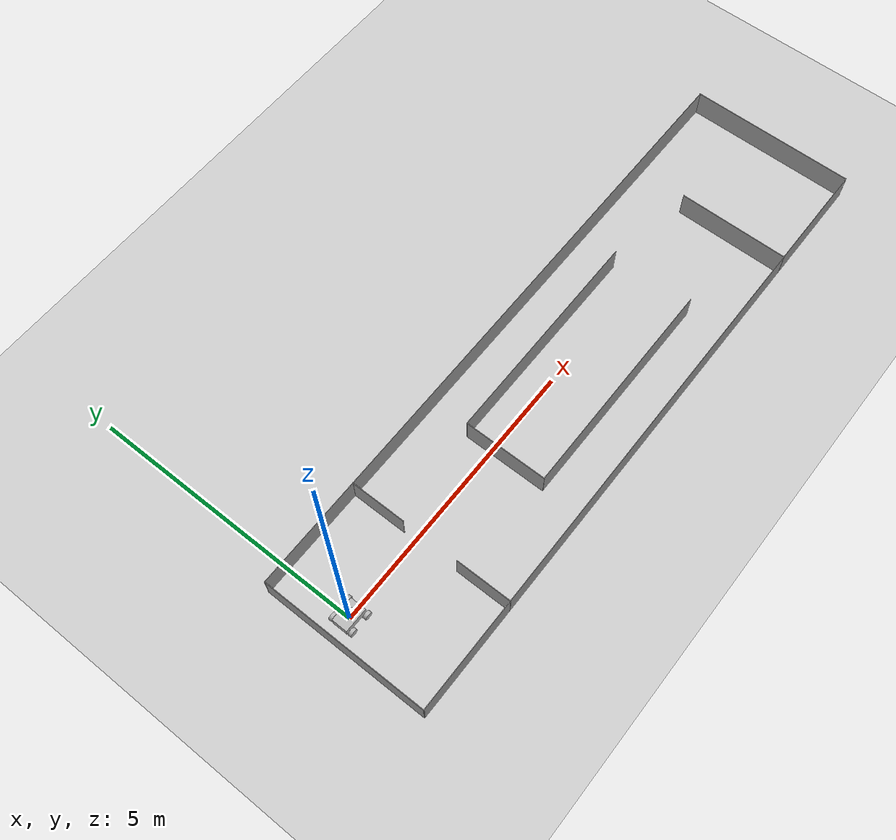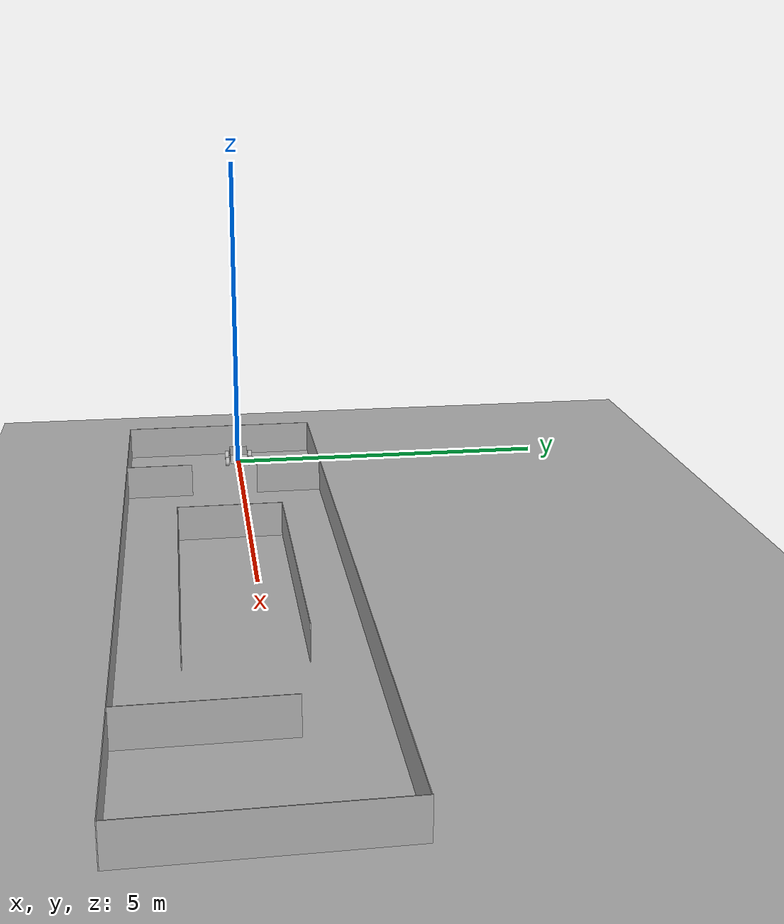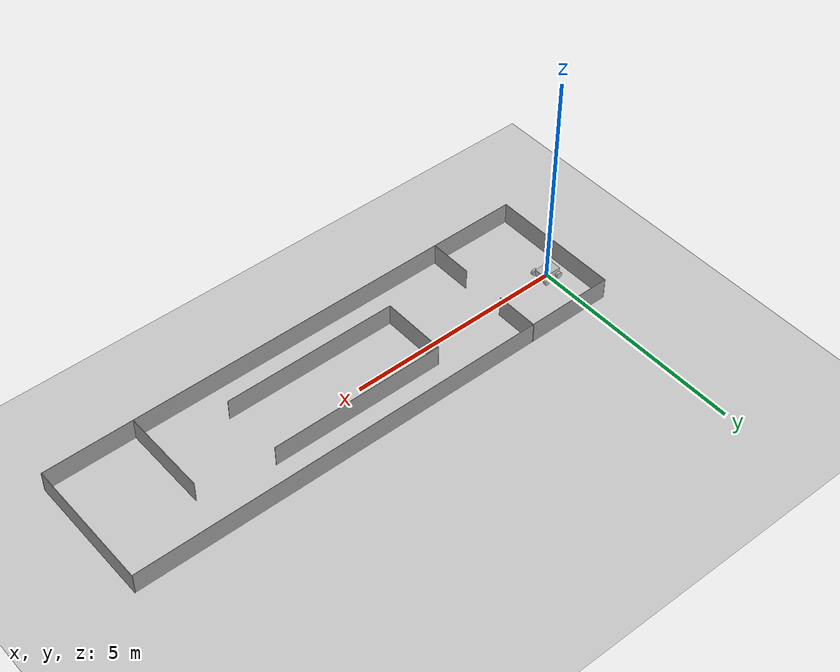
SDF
<sdf version="1.6">
 <world name="default">
  <light name="sun" type="directional">
   <pose>0 0 10 0 -0 0</pose>
   <diffuse>0.8 0.8 0.8 1</diffuse>
   <specular>0.2 0.2 0.2 1</specular>
   <attenuation>
    <range>1000</range>
    <constant>0.9</constant>
    <linear>0.01</linear>
    <quadratic>0.001</quadratic>
   </attenuation>
   <direction>-0.5 0.1 -0.9</direction>
  </light>
  <model name="ground_plane">
   <static>1</static>
   <link name="link">
    <collision name="collision">
     <geometry><plane><normal>0 0 1</normal><size>100 100</size></plane></geometry>
     <surface>
      <contact><collide_bitmask>65535</collide_bitmask></contact>
      <friction><ode><mu>100</mu><mu2>50</mu2></ode></friction>
     </surface>
    </collision>
    <visual name="visual">
     <cast_shadows>0</cast_shadows>
     <geometry><plane><normal>0 0 1</normal><size>100 100</size></plane></geometry>
     <material>
      <script><uri>file://media/materials/scripts/gazebo.material</uri><name>Gazebo/Grey</name></script>
     </material>
    </visual>
   </link>
  </model>
  <gravity>0 0 -9.8</gravity>
  <magnetic_field>6e-06 2.3e-05 -4.2e-05</magnetic_field>
  <atmosphere type="adiabatic"/>
  <physics name="default_physics" default="0" type="ode">
   <max_step_size>0.001</max_step_size>
   <real_time_factor>1</real_time_factor>
   <real_time_update_rate>1000</real_time_update_rate>
  </physics>
  <scene><ambient>0.4 0.4 0.4 1</ambient><background>0.7 0.7 0.7 1</background><shadows>1</shadows></scene>
  <audio><device>default</device></audio>
  <spherical_coordinates>
   <surface_model>EARTH_WGS84</surface_model>
   <latitude_deg>0</latitude_deg>
   <longitude_deg>0</longitude_deg>
   <elevation>0</elevation>
   <heading_deg>0</heading_deg>
  </spherical_coordinates>
  <model name="modify">
   <link name="base_link">
    <inertial>
     <pose>0.000118 -0.009253 0.000381 0 -0 0</pose>
     <mass>18.6538</mass>
     <inertia>
      <ixx>0.159123</ixx>
      <ixy>-4.96376e-18</ixy>
      <ixz>0.000414411</ixz>
      <iyy>0.324673</iyy>
      <iyz>-5.89249e-16</iyz>
      <izz>0.409099</izz>
     </inertia>
    </inertial>
    <collision name="base_link_collision">
     <geometry>
      <mesh><scale>1 1 1</scale><uri>/home/mamdouh/grad_ws/src/modify/meshes/base_link.STL</uri></mesh>
     </geometry>
    </collision>
    <visual name="base_link_visual">
     <geometry>
      <mesh><scale>1 1 1</scale><uri>/home/mamdouh/grad_ws/src/modify/meshes/base_link.STL</uri></mesh>
     </geometry>
    </visual>
   </link>
   <link name="BLwheel">
    <pose>-0.144945 0.209747 -0.041894 0 -0 0</pose>
    <inertial>
     <pose>-0 -0.02982 0 0 -0 0</pose>
     <mass>0.968</mass>
     <inertia>
      <ixx>0.00153802</ixx>
      <ixy>-1.75634e-20</ixy>
      <ixz>-1.7178e-34</ixz>
      <iyy>0.00249088</iyy>
      <iyz>3.31897e-18</iyz>
      <izz>0.00153802</izz>
     </inertia>
    </inertial>
    <collision name="BLwheel_collision">
     <geometry>
      <mesh><scale>1 1 1</scale><uri>/home/mamdouh/grad_ws/src/modify/meshes/BLwheel.STL</uri></mesh>
     </geometry>
    </collision>
    <visual name="BLwheel_visual">
     <geometry>
      <mesh><scale>1 1 1</scale><uri>/home/mamdouh/grad_ws/src/modify/meshes/BLwheel.STL</uri></mesh>
     </geometry>
    </visual>
   </link>
   <joint name="BLwheel_joint" type="revolute">
    <child>BLwheel</child>
    <parent>base_link</parent>
    <axis>
     <xyz>0 1 0</xyz>
     <limit><lower>-1e+16</lower><upper>1e+16</upper></limit>
     <dynamics><spring_reference>0</spring_reference><spring_stiffness>0</spring_stiffness></dynamics>
     <use_parent_model_frame>1</use_parent_model_frame>
    </axis>
   </joint>
   <link name="BRwheel">
    <pose>-0.144945 -0.228253 -0.041894 0 -0 0</pose>
    <inertial>
     <pose>-0 0.02982 0 0 -0 0</pose>
     <mass>0.968</mass>
     <inertia>
      <ixx>0.00153802</ixx>
      <ixy>-5.50781e-20</ixy>
      <ixz>9.42449e-21</ixz>
      <iyy>0.00249088</iyy>
      <iyz>6.63984e-18</iyz>
      <izz>0.00153802</izz>
     </inertia>
    </inertial>
    <collision name="BRwheel_collision">
     <geometry>
      <mesh><scale>1 1 1</scale><uri>/home/mamdouh/grad_ws/src/modify/meshes/BRwheel.STL</uri></mesh>
     </geometry>
    </collision>
    <visual name="BRwheel_visual">
     <geometry>
      <mesh><scale>1 1 1</scale><uri>/home/mamdouh/grad_ws/src/modify/meshes/BRwheel.STL</uri></mesh>
     </geometry>
    </visual>
   </link>
   <joint name="BRwheel_joint" type="revolute">
    <child>BRwheel</child>
    <parent>base_link</parent>
    <axis>
     <xyz>0 1 0</xyz>
     <limit><lower>-1e+16</lower><upper>1e+16</upper></limit>
     <dynamics><spring_reference>0</spring_reference><spring_stiffness>0</spring_stiffness></dynamics>
     <use_parent_model_frame>1</use_parent_model_frame>
    </axis>
   </joint>
   <link name="FLwheel">
    <pose>0.185055 0.209747 -0.042449 0 -0 0</pose>
    <inertial>
     <pose>-0 -0.02982 0 0 -0 0</pose>
     <mass>0.968</mass>
     <inertia>
      <ixx>0.00153802</ixx>
      <ixy>-1.11367e-19</ixy>
      <ixz>9.7999e-21</ixz>
      <iyy>0.00249088</iyy>
      <iyz>6.77145e-18</iyz>
      <izz>0.00153802</izz>
     </inertia>
    </inertial>
    <collision name="FLwheel_collision">
     <geometry>
      <mesh><scale>1 1 1</scale><uri>/home/mamdouh/grad_ws/src/modify/meshes/FLwheel.STL</uri></mesh>
     </geometry>
    </collision>
    <visual name="FLwheel_visual">
     <geometry>
      <mesh><scale>1 1 1</scale><uri>/home/mamdouh/grad_ws/src/modify/meshes/FLwheel.STL</uri></mesh>
     </geometry>
    </visual>
   </link>
   <joint name="FLwheel_joint" type="revolute">
    <child>FLwheel</child>
    <parent>base_link</parent>
    <axis>
     <xyz>0 1 0</xyz>
     <limit><lower>-1e+16</lower><upper>1e+16</upper></limit>
     <dynamics><spring_reference>0</spring_reference><spring_stiffness>0</spring_stiffness></dynamics>
     <use_parent_model_frame>1</use_parent_model_frame>
    </axis>
   </joint>
   <link name="FRwheel">
    <pose>0.185055 -0.228253 -0.042449 0 -0 0</pose>
    <inertial>
     <pose>0 0.02982 0 0 -0 0</pose>
     <mass>0.968</mass>
     <inertia>
      <ixx>0.00153802</ixx>
      <ixy>-6.73586e-18</ixy>
      <ixz>2.36055e-32</ixz>
      <iyy>0.00249088</iyy>
      <iyz>-3.31897e-18</iyz>
      <izz>0.00153802</izz>
     </inertia>
    </inertial>
    <collision name="FRwheel_collision">
     <geometry>
      <mesh><scale>1 1 1</scale><uri>/home/mamdouh/grad_ws/src/modify/meshes/FRwheel.STL</uri></mesh>
     </geometry>
    </collision>
    <visual name="FRwheel_visual">
     <geometry>
      <mesh><scale>1 1 1</scale><uri>/home/mamdouh/grad_ws/src/modify/meshes/FRwheel.STL</uri></mesh>
     </geometry>
    </visual>
   </link>
   <joint name="FRwheel_joint" type="revolute">
    <child>FRwheel</child>
    <parent>base_link</parent>
    <axis>
     <xyz>0 1 0</xyz>
     <limit><lower>-1e+16</lower><upper>1e+16</upper></limit>
     <dynamics><spring_reference>0</spring_reference><spring_stiffness>0</spring_stiffness></dynamics>
     <use_parent_model_frame>1</use_parent_model_frame>
    </axis>
   </joint>
   <link name="Lidar">
    <pose>0.07035 -0.009253 0.104803 0 -0 0</pose>
    <inertial>
     <pose>-4.7e-05 -0 -5.4e-05 0 -0 0</pose>
     <mass>0.271383</mass>
     <inertia>
      <ixx>0.000174496</ixx>
      <ixy>-1.59286e-20</ixy>
      <ixz>7.18405e-08</ixz>
      <iyy>0.000174496</iyy>
      <iyz>-3.14491e-19</iyz>
      <izz>0.000217146</izz>
     </inertia>
    </inertial>
    <collision name="Lidar_collision">
     <geometry>
      <mesh><scale>1 1 1</scale><uri>/home/mamdouh/grad_ws/src/modify/meshes/Lidar.STL</uri></mesh>
     </geometry>
    </collision>
    <visual name="Lidar_visual">
     <geometry>
      <mesh><scale>1 1 1</scale><uri>/home/mamdouh/grad_ws/src/modify/meshes/Lidar.STL</uri></mesh>
     </geometry>
     <material><script><uri>__default__</uri><name>__default__</name></script></material>
    </visual>
    <sensor name="rplidar" type="gpu_ray">
     <always_on>1</always_on>
     <pose>-4.7e-05 -0 -5.4e-05 0 -0 0</pose>
     <visualize>1</visualize>
     <update_rate>50</update_rate>
     <ray>
      <scan>
       <horizontal>
        <samples>15</samples>
        <resolution>1</resolution>
        <min_angle>-3.12</min_angle>
        <max_angle>3.14</max_angle>
       </horizontal>
      </scan>
      <range><min>0.15</min><max>12</max><resolution>0.02</resolution></range>
     </ray>
     <plugin name="gpu_laser" filename="libgazebo_ros_gpu_laser.so">
      <topicName>/scan</topicName>
      <frameName>Lidar</frameName>
      <robotNamespace>/</robotNamespace>
     </plugin>
    </sensor>
   </link>
   <joint name="Lidar_joint" type="revolute">
    <child>Lidar</child>
    <parent>base_link</parent>
    <axis>
     <xyz>0.001684 0 0.999999</xyz>
     <limit><lower>-1e+16</lower><upper>1e+16</upper></limit>
     <dynamics><spring_reference>0</spring_reference><spring_stiffness>0</spring_stiffness></dynamics>
     <use_parent_model_frame>1</use_parent_model_frame>
    </axis>
   </joint>
   <plugin name="gazebo_ros_control" filename="libgazebo_ros_control.so">
    <robotNamespace>/</robotNamespace>
   </plugin>
   <static>0</static>
   <plugin name="omni_steering" filename="libgazebo_ros_planar_move.so">
    <commandTopic>cmd_vel</commandTopic>
    <odometryTopic>odom</odometryTopic>
    <odometryFrame>odom</odometryFrame>
    <odometryRate>50.0</odometryRate>
    <robotBaseFrame>base_link</robotBaseFrame>
    <publishTF>1</publishTF>
    <robotNamespace>/</robotNamespace>
   </plugin>
   <pose>-0.002877 0.010435 0.114028 0.000618 -0.001723 -0.005537</pose>
  </model>
  <model name="robot_maze2">
   <pose>5.28572 -0.286595 0 0 -0 0</pose>
   <link name="Wall_0">
    <collision name="Wall_0_Collision">
     <geometry><box><size>3 0.01 0.5</size></box></geometry>
     <pose>0 0 0.25 0 -0 0</pose>
    </collision>
    <visual name="Wall_0_Visual">
     <pose>0 0 0.25 0 -0 0</pose>
     <geometry><box><size>3 0.01 0.5</size></box></geometry>
     <material>
      <script><uri>file://media/materials/scripts/gazebo.material</uri><name>Gazebo/Grey</name></script>
      <ambient>1 1 1 1</ambient>
     </material>
     <meta><layer>0</layer></meta>
    </visual>
    <pose>5.73006 -0.003425 0 0 -0 -1.5708</pose>
   </link>
   <link name="Wall_14">
    <collision name="Wall_14_Collision">
     <geometry><box><size>1 0.01 0.5</size></box></geometry>
     <pose>0 0 0.25 0 -0 0</pose>
    </collision>
    <visual name="Wall_14_Visual">
     <pose>0 0 0.25 0 -0 0</pose>
     <geometry><box><size>1 0.01 0.5</size></box></geometry>
     <material>
      <script><uri>file://media/materials/scripts/gazebo.material</uri><name>Gazebo/Grey</name></script>
      <ambient>1 1 1 1</ambient>
     </material>
     <meta><layer>0</layer></meta>
    </visual>
    <pose>-3.75485 1.00345 0 0 -0 -1.5708</pose>
   </link>
   <link name="Wall_2">
    <collision name="Wall_2_Collision">
     <geometry><box><size>2.00443 0.01 0.5</size></box></geometry>
     <pose>0 0 0.25 0 -0 0</pose>
    </collision>
    <visual name="Wall_2_Visual">
     <pose>0 0 0.25 0 -0 0</pose>
     <geometry><box><size>2.00443 0.01 0.5</size></box></geometry>
     <material>
      <script><uri>file://media/materials/scripts/gazebo.material</uri><name>Gazebo/Grey</name></script>
      <ambient>1 1 1 1</ambient>
     </material>
     <meta><layer>0</layer></meta>
    </visual>
    <pose>4.73506 -1.49842 0 0 -0 3.14159</pose>
   </link>
   <link name="Wall_20">
    <collision name="Wall_20_Collision">
     <geometry><box><size>4 0.01 0.5</size></box></geometry>
     <pose>0 0 0.25 0 -0 0</pose>
    </collision>
    <visual name="Wall_20_Visual">
     <pose>0 0 0.25 0 -0 0</pose>
     <geometry><box><size>4 0.01 0.5</size></box></geometry>
     <material>
      <script><uri>file://media/materials/scripts/gazebo.material</uri><name>Gazebo/Grey</name></script>
      <ambient>1 1 1 1</ambient>
     </material>
     <meta><layer>0</layer></meta>
    </visual>
    <pose>0.090151 -0.738425 0 0 -0 0</pose>
   </link>
   <link name="Wall_22">
    <collision name="Wall_22_Collision">
     <geometry><box><size>4 0.01 0.5</size></box></geometry>
     <pose>0 0 0.25 0 -0 0</pose>
    </collision>
    <visual name="Wall_22_Visual">
     <pose>0 0 0.25 0 -0 0</pose>
     <geometry><box><size>4 0.01 0.5</size></box></geometry>
     <material>
      <script><uri>file://media/materials/scripts/gazebo.material</uri><name>Gazebo/Grey</name></script>
      <ambient>1 1 1 1</ambient>
     </material>
     <meta><layer>0</layer></meta>
    </visual>
    <pose>0.090151 0.751575 0 0 -0 0</pose>
   </link>
   <link name="Wall_25">
    <collision name="Wall_25_Collision">
     <geometry><box><size>1.5 0.01 0.5</size></box></geometry>
     <pose>0 0 0.25 0 -0 0</pose>
    </collision>
    <visual name="Wall_25_Visual">
     <pose>0 0 0.25 0 -0 0</pose>
     <geometry><box><size>1.5 0.01 0.5</size></box></geometry>
     <material>
      <script><uri>file://media/materials/scripts/gazebo.material</uri><name>Gazebo/Grey</name></script>
      <ambient>1 1 1 1</ambient>
     </material>
     <meta><layer>0</layer></meta>
    </visual>
    <pose>-1.90485 0.006575 0 0 -0 -1.5708</pose>
   </link>
   <link name="Wall_29">
    <collision name="Wall_29_Collision">
     <geometry><box><size>11.4707 0.01 0.5</size></box></geometry>
     <pose>0 0 0.25 0 -0 0</pose>
    </collision>
    <visual name="Wall_29_Visual">
     <pose>0 0 0.25 0 -0 0</pose>
     <geometry><box><size>11.4707 0.01 0.5</size></box></geometry>
     <material>
      <script><uri>file://media/materials/scripts/gazebo.material</uri><name>Gazebo/Grey</name></script>
      <ambient>1 1 1 1</ambient>
     </material>
     <meta><layer>0</layer></meta>
    </visual>
    <pose>-0.001912 1.48715 0 0 -0 -0.000772</pose>
   </link>
   <link name="Wall_3">
    <collision name="Wall_3_Collision">
     <geometry><box><size>2.00004 0.01 0.5</size></box></geometry>
     <pose>0 0 0.25 0 -0 0</pose>
    </collision>
    <visual name="Wall_3_Visual">
     <pose>0 0 0.25 0 -0 0</pose>
     <geometry><box><size>2.00004 0.01 0.5</size></box></geometry>
     <material>
      <script><uri>file://media/materials/scripts/gazebo.material</uri><name>Gazebo/Grey</name></script>
      <ambient>1 1 1 1</ambient>
     </material>
     <meta><layer>0</layer></meta>
    </visual>
    <pose>3.72752 -0.503425 0 0 -0 1.5708</pose>
   </link>
   <link name="Wall_5">
    <collision name="Wall_5_Collision">
     <geometry><box><size>7.47937 0.01 0.5</size></box></geometry>
     <pose>0 0 0.25 0 -0 0</pose>
    </collision>
    <visual name="Wall_5_Visual">
     <pose>0 0 0.25 0 -0 0</pose>
     <geometry><box><size>7.47937 0.01 0.5</size></box></geometry>
     <material>
      <script><uri>file://media/materials/scripts/gazebo.material</uri><name>Gazebo/Grey</name></script>
      <ambient>1 1 1 1</ambient>
     </material>
     <meta><layer>0</layer></meta>
    </visual>
    <pose>-0.007162 -1.49842 0 0 -0 3.14159</pose>
   </link>
   <link name="Wall_6">
    <collision name="Wall_6_Collision">
     <geometry><box><size>1 0.01 0.5</size></box></geometry>
     <pose>0 0 0.25 0 -0 0</pose>
    </collision>
    <visual name="Wall_6_Visual">
     <pose>0 0 0.25 0 -0 0</pose>
     <geometry><box><size>1 0.01 0.5</size></box></geometry>
     <material>
      <script><uri>file://media/materials/scripts/gazebo.material</uri><name>Gazebo/Grey</name></script>
      <ambient>1 1 1 1</ambient>
     </material>
     <meta><layer>0</layer></meta>
    </visual>
    <pose>-3.74185 -1.00343 0 0 -0 1.5708</pose>
   </link>
   <link name="Wall_8">
    <collision name="Wall_8_Collision">
     <geometry><box><size>2 0.01 0.5</size></box></geometry>
     <pose>0 0 0.25 0 -0 0</pose>
    </collision>
    <visual name="Wall_8_Visual">
     <pose>0 0 0.25 0 -0 0</pose>
     <geometry><box><size>2 0.01 0.5</size></box></geometry>
     <material>
      <script><uri>file://media/materials/scripts/gazebo.material</uri><name>Gazebo/Grey</name></script>
      <ambient>1 1 1 1</ambient>
     </material>
     <meta><layer>0</layer></meta>
    </visual>
    <pose>-4.73685 -1.49842 0 0 -0 3.14159</pose>
   </link>
   <link name="Wall_9">
    <collision name="Wall_9_Collision">
     <geometry><box><size>3 0.01 0.5</size></box></geometry>
     <pose>0 0 0.25 0 -0 0</pose>
    </collision>
    <visual name="Wall_9_Visual">
     <pose>0 0 0.25 0 -0 0</pose>
     <geometry><box><size>3 0.01 0.5</size></box></geometry>
     <material>
      <script><uri>file://media/materials/scripts/gazebo.material</uri><name>Gazebo/Grey</name></script>
      <ambient>1 1 1 1</ambient>
     </material>
     <meta><layer>0</layer></meta>
    </visual>
    <pose>-5.73185 -0.003425 0 0 -0 1.5708</pose>
   </link>
   <static>1</static>
  </model>
 </world>
</sdf>
